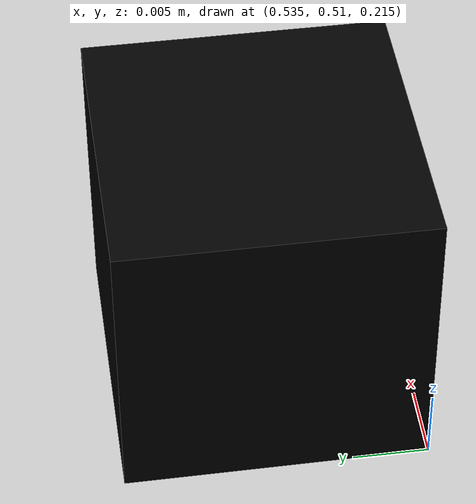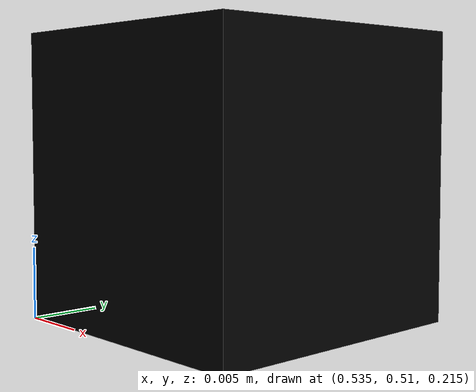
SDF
<?xml version="1.0" ?>
<sdf version="1.7">
	<model name="static_corner_block">
		<static>true</static>
		<link name="corner_block">
			<pose>0.545 0.52 0.225 0.0 0.0 0.0</pose>
			<inertial>
				<mass>0.0031200000000000004</mass>
				<inertia>
					<ixx>2.0800000000000004e-07</ixx>
					<ixy>0.0</ixy>
					<ixz>0.0</ixz>
					<iyy>2.0800000000000004e-07</iyy>
					<iyz>0.0</iyz>
					<izz>2.0800000000000004e-07</izz>
				</inertia>
			</inertial>
			<collision name="collision">
				<geometry>
					<box>
						<size>0.02 0.02 0.02</size>
					</box>
				</geometry>
			</collision>
			<visual name="white">
				<geometry>
					<box>
						<size>0.02 0.02 0.02</size>
					</box>
				</geometry>
				<material>
					<diffuse>0 0 0 1</diffuse>
				</material>
			</visual>
		</link>
	</model>
</sdf>
